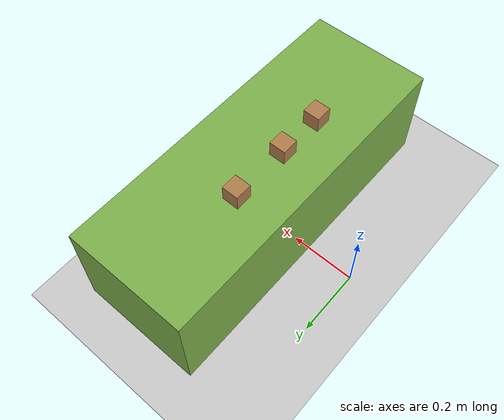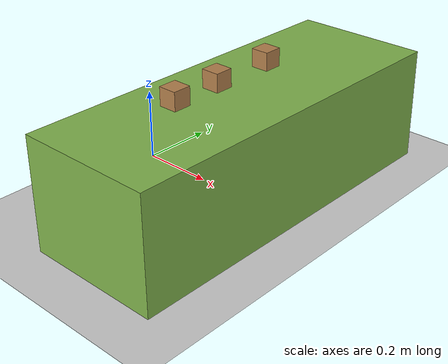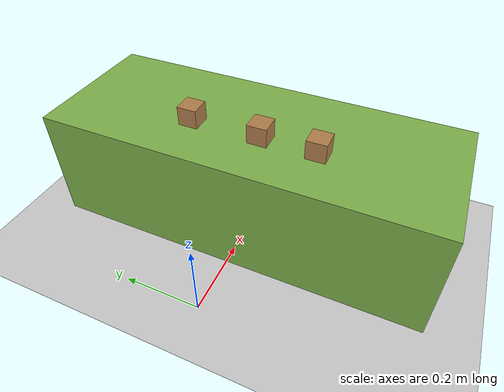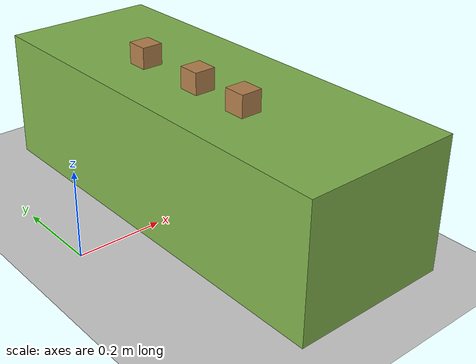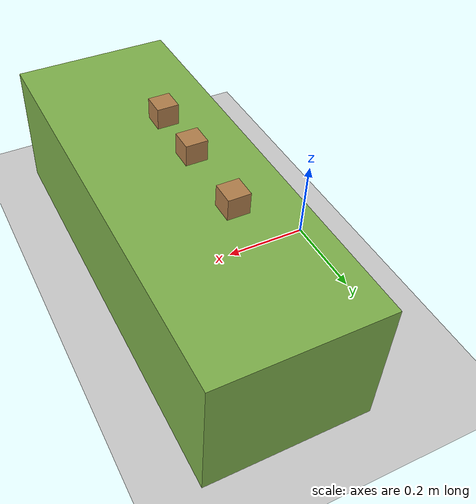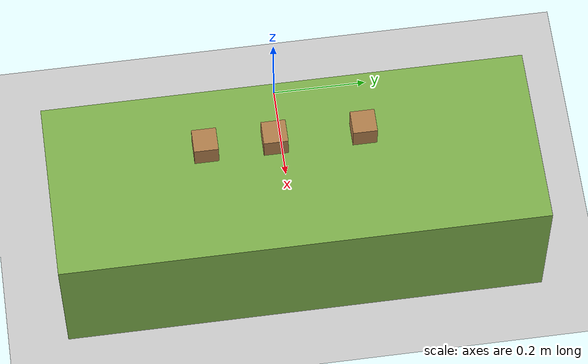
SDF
<?xml version="1.0" ?>
<sdf version="1.6">
  <world name="default">
    <include>
      <uri>model://ground_plane</uri>
    </include>

    <include>
      <uri>model://sun</uri>
    </include>

    <include>
      <uri>model://unit_box</uri>
      <pose> 0.338408 0.0 0.155488 0 0 0</pose>
    </include>

    <include>
      <uri>model://green_wooden_cube</uri>
      <pose> 0.288978 -0.175919 0.310979 0 0 0</pose>
    </include>

    <include>
      <uri>model://blue_wooden_cube</uri>
      <pose> 0.288978 -0.034 0.310979 0 0 0</pose>
    </include>

    <include>
      <uri>model://red_wooden_cube</uri>
      <pose> 0.288978 0.148379 0.310979 0 0 0</pose>
    </include>

    <physics type="ode">
      <real_time_update_rate>1000.0</real_time_update_rate>
    </physics>

    <gravity>
      0.0 0.0 -9.8
    </gravity>

    <gui fullscreen='0'>
    </gui>

  </world>
</sdf>

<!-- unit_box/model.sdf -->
<sdf version='1.7'>
  <model name='unit_box'>
    <link name='link'>
      <inertial>
        <mass>1</mass>
        <inertia>
          <ixx>0.166667</ixx>
          <ixy>0</ixy>
          <ixz>0</ixz>
          <iyy>0.166667</iyy>
          <iyz>0</iyz>
          <izz>0.166667</izz>
        </inertia>
        <pose>0 0 0 0 -0 0</pose>
      </inertial>
      <self_collide>0</self_collide>
      <enable_wind>0</enable_wind>
      <kinematic>0</kinematic>
      <pose>0 0 0 0 -0 0</pose>
      <gravity>1</gravity>
      <visual name='visual'>
        <geometry>
          <box>
            <size>0.375399 1 0.310976</size>
          </box>
        </geometry>
        <material>
          <script>
            <name>Gazebo/Grey</name>
            <uri>file://media/materials/scripts/gazebo.material</uri>
          </script>
          <shader type='pixel'>
            <normal_map>__default__</normal_map>
          </shader>
          <specular>0.1 0.6 0.6 1</specular>
          <ambient>0.2 0.3 0.8 1</ambient>
          <diffuse>0.5 0.7 0.3 1</diffuse>
          <emissive>0.5 0.4 0.6 1</emissive>
        </material>
        <pose>0 0 0 0 -0 0</pose>
        <transparency>0</transparency>
        <cast_shadows>1</cast_shadows>
      </visual>
      <collision name='collision'>
        <laser_retro>0</laser_retro>
        <max_contacts>10</max_contacts>
        <pose>0 0 0 0 -0 0</pose>
        <geometry>
          <box>
            <size>0.375399 1 0.310976</size>
          </box>
        </geometry>
        <surface>
          <friction>
            <ode>
              <mu>1</mu>
              <mu2>1</mu2>
              <fdir1>0 0 0</fdir1>
              <slip1>0</slip1>
              <slip2>0</slip2>
            </ode>
            <torsional>
              <coefficient>1</coefficient>
              <patch_radius>0</patch_radius>
              <surface_radius>0</surface_radius>
              <use_patch_radius>1</use_patch_radius>
              <ode>
                <slip>0</slip>
              </ode>
            </torsional>
          </friction>
          <bounce>
            <restitution_coefficient>0</restitution_coefficient>
            <threshold>1e+06</threshold>
          </bounce>
          <contact>
            <collide_without_contact>0</collide_without_contact>
            <collide_without_contact_bitmask>1</collide_without_contact_bitmask>
            <collide_bitmask>1</collide_bitmask>
            <ode>
              <soft_cfm>0</soft_cfm>
              <soft_erp>0.2</soft_erp>
              <kp>1e+13</kp>
              <kd>1</kd>
              <max_vel>0.01</max_vel>
              <min_depth>0</min_depth>
            </ode>
            <bullet>
              <split_impulse>1</split_impulse>
              <split_impulse_penetration_threshold>-0.01</split_impulse_penetration_threshold>
              <soft_cfm>0</soft_cfm>
              <soft_erp>0.2</soft_erp>
              <kp>1e+13</kp>
              <kd>1</kd>
            </bullet>
          </contact>
        </surface>
      </collision>
    </link>
    <static>1</static>
    <allow_auto_disable>1</allow_auto_disable>
  </model>
</sdf>

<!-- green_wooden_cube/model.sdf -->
<sdf version='1.7'>
  <model name='green_wooden_cube'>
    <link name='link'>
      <pose>0 0 0.025 0 -0 0</pose>
      <inertial>
        <mass>0.0565</mass>
        <inertia>
          <ixx>2.354e-05</ixx>
          <ixy>0</ixy>
          <ixz>0</ixz>
          <iyy>2.354e-05</iyy>
          <iyz>0</iyz>
          <izz>2.354e-05</izz>
        </inertia>
        <pose>0 0 0 0 -0 0</pose>
      </inertial>
      <self_collide>0</self_collide>
      <enable_wind>0</enable_wind>
      <kinematic>0</kinematic>
      <gravity>1</gravity>
      <visual name='visual'>
        <geometry>
          <box>
            <size>0.05 0.05 0.05</size>
          </box>
        </geometry>
        <material>
          <script>
            <uri>file://media/materials/scripts/gazebo.material</uri>
            <name>Gazebo/Wood</name>
          </script>
          <shader type='pixel'>
            <normal_map>__default__</normal_map>
          </shader>
          <diffuse>0 1 0 0</diffuse>
          <ambient>0 1 0 1</ambient>
          <specular>0 1 0 1</specular>
          <emissive>0 0 0 1</emissive>
        </material>
        <pose>0 0 0 0 -0 0</pose>
        <transparency>0</transparency>
        <cast_shadows>1</cast_shadows>
      </visual>
      <collision name='collision'>
        <laser_retro>0</laser_retro>
        <max_contacts>10</max_contacts>
        <pose>0 0 0 0 -0 0</pose>
        <geometry>
          <box>
            <size>0.05 0.05 0.05</size>
          </box>
        </geometry>
        <surface>
          <friction>
            <ode>
              <mu>1</mu>
              <mu2>1</mu2>
              <fdir1>0 0 0</fdir1>
              <slip1>0</slip1>
              <slip2>0</slip2>
            </ode>
            <torsional>
              <coefficient>1</coefficient>
              <patch_radius>0</patch_radius>
              <surface_radius>0.05</surface_radius>
              <use_patch_radius>0</use_patch_radius>
              <ode>
                <slip>0</slip>
              </ode>
            </torsional>
          </friction>
          <bounce>
            <restitution_coefficient>0</restitution_coefficient>
            <threshold>1e+06</threshold>
          </bounce>
          <contact>
            <collide_without_contact>0</collide_without_contact>
            <collide_without_contact_bitmask>1</collide_without_contact_bitmask>
            <collide_bitmask>1</collide_bitmask>
            <ode>
              <soft_cfm>0</soft_cfm>
              <soft_erp>0.2</soft_erp>
              <kp>100000</kp>
              <kd>1</kd>
              <max_vel>1</max_vel>
              <min_depth>0.001</min_depth>
            </ode>
            <bullet>
              <split_impulse>1</split_impulse>
              <split_impulse_penetration_threshold>-0.01</split_impulse_penetration_threshold>
              <soft_cfm>0</soft_cfm>
              <soft_erp>0.2</soft_erp>
              <kp>100000</kp>
              <kd>1</kd>
            </bullet>
          </contact>
        </surface>
      </collision>
    </link>
    <static>0</static>
    <allow_auto_disable>1</allow_auto_disable>
  </model>
</sdf>

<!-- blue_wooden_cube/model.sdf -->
<sdf version='1.7'>
  <model name='blue_wooden_cube'>
    <link name='link'>
      <pose>0 0 0.025 0 -0 0</pose>
      <inertial>
        <mass>0.0565</mass>
        <inertia>
          <ixx>2.354e-05</ixx>
          <ixy>0</ixy>
          <ixz>0</ixz>
          <iyy>2.354e-05</iyy>
          <iyz>0</iyz>
          <izz>2.354e-05</izz>
        </inertia>
        <pose>0 0 0 0 -0 0</pose>
      </inertial>
      <self_collide>0</self_collide>
      <enable_wind>0</enable_wind>
      <kinematic>0</kinematic>
      <gravity>1</gravity>
      <visual name='visual'>
        <geometry>
          <box>
            <size>0.05 0.05 0.05</size>
          </box>
        </geometry>
        <material>
          <script>
            <uri>file://media/materials/scripts/gazebo.material</uri>
            <name>Gazebo/Wood</name>
          </script>
          <shader type='pixel'>
            <normal_map>__default__</normal_map>
          </shader>
          <ambient>0 0 1 1</ambient>
          <diffuse>0 0 1 1</diffuse>
          <specular>0 0 1 1</specular>
          <emissive>0 0 0 1</emissive>
        </material>
        <pose>0 0 0 0 -0 0</pose>
        <transparency>0</transparency>
        <cast_shadows>1</cast_shadows>
      </visual>
      <collision name='collision'>
        <laser_retro>0</laser_retro>
        <max_contacts>10</max_contacts>
        <pose>0 0 0 0 -0 0</pose>
        <geometry>
          <box>
            <size>0.05 0.05 0.05</size>
          </box>
        </geometry>
        <surface>
          <friction>
            <ode>
              <mu>1</mu>
              <mu2>1</mu2>
              <fdir1>0 0 0</fdir1>
              <slip1>0</slip1>
              <slip2>0</slip2>
            </ode>
            <torsional>
              <coefficient>1</coefficient>
              <patch_radius>0</patch_radius>
              <surface_radius>0.05</surface_radius>
              <use_patch_radius>0</use_patch_radius>
              <ode>
                <slip>0</slip>
              </ode>
            </torsional>
          </friction>
          <bounce>
            <restitution_coefficient>0</restitution_coefficient>
            <threshold>1e+06</threshold>
          </bounce>
          <contact>
            <collide_without_contact>0</collide_without_contact>
            <collide_without_contact_bitmask>1</collide_without_contact_bitmask>
            <collide_bitmask>1</collide_bitmask>
            <ode>
              <soft_cfm>0</soft_cfm>
              <soft_erp>0.2</soft_erp>
              <kp>100000</kp>
              <kd>1</kd>
              <max_vel>1</max_vel>
              <min_depth>0.001</min_depth>
            </ode>
            <bullet>
              <split_impulse>1</split_impulse>
              <split_impulse_penetration_threshold>-0.01</split_impulse_penetration_threshold>
              <soft_cfm>0</soft_cfm>
              <soft_erp>0.2</soft_erp>
              <kp>100000</kp>
              <kd>1</kd>
            </bullet>
          </contact>
        </surface>
      </collision>
    </link>
    <static>0</static>
    <allow_auto_disable>1</allow_auto_disable>
  </model>
</sdf>

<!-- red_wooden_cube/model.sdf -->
<sdf version='1.7'>
  <model name='red_wooden_cube'>
    <link name='link'>
      <pose>0 0 0.025 0 -0 0</pose>
      <inertial>
        <mass>0.0565</mass>
        <inertia>
          <ixx>2.354e-05</ixx>
          <ixy>0</ixy>
          <ixz>0</ixz>
          <iyy>2.354e-05</iyy>
          <iyz>0</iyz>
          <izz>2.354e-05</izz>
        </inertia>
        <pose>0 0 0 0 -0 0</pose>
      </inertial>
      <self_collide>0</self_collide>
      <enable_wind>0</enable_wind>
      <kinematic>0</kinematic>
      <gravity>1</gravity>
      <visual name='visual'>
        <geometry>
          <box>
            <size>0.05 0.05 0.05</size>
          </box>
        </geometry>
        <material>
          <script>
            <uri>file://media/materials/scripts/gazebo.material</uri>
            <name>Gazebo/Wood</name>
          </script>
          <shader type='pixel'>
            <normal_map>__default__</normal_map>
          </shader>
          <ambient>1 0 0 0</ambient>
          <diffuse>1 0 0 1</diffuse>
          <specular>1 0 0 1</specular>
          <emissive>0 0 0 1</emissive>
        </material>
        <pose>0 0 0 0 -0 0</pose>
        <transparency>0</transparency>
        <cast_shadows>1</cast_shadows>
      </visual>
      <collision name='collision'>
        <laser_retro>0</laser_retro>
        <max_contacts>10</max_contacts>
        <pose>0 0 0 0 -0 0</pose>
        <geometry>
          <box>
            <size>0.05 0.05 0.05</size>
          </box>
        </geometry>
        <surface>
          <friction>
            <ode>
              <mu>1</mu>
              <mu2>1</mu2>
              <fdir1>0 0 0</fdir1>
              <slip1>0</slip1>
              <slip2>0</slip2>
            </ode>
            <torsional>
              <coefficient>1</coefficient>
              <patch_radius>0</patch_radius>
              <surface_radius>0.05</surface_radius>
              <use_patch_radius>0</use_patch_radius>
              <ode>
                <slip>0</slip>
              </ode>
            </torsional>
          </friction>
          <bounce>
            <restitution_coefficient>0</restitution_coefficient>
            <threshold>1e+06</threshold>
          </bounce>
          <contact>
            <collide_without_contact>0</collide_without_contact>
            <collide_without_contact_bitmask>1</collide_without_contact_bitmask>
            <collide_bitmask>1</collide_bitmask>
            <ode>
              <soft_cfm>0</soft_cfm>
              <soft_erp>0.2</soft_erp>
              <kp>100000</kp>
              <kd>1</kd>
              <max_vel>1</max_vel>
              <min_depth>0.001</min_depth>
            </ode>
            <bullet>
              <split_impulse>1</split_impulse>
              <split_impulse_penetration_threshold>-0.01</split_impulse_penetration_threshold>
              <soft_cfm>0</soft_cfm>
              <soft_erp>0.2</soft_erp>
              <kp>100000</kp>
              <kd>1</kd>
            </bullet>
          </contact>
        </surface>
      </collision>
    </link>
    <static>0</static>
    <allow_auto_disable>1</allow_auto_disable>
  </model>
</sdf>
